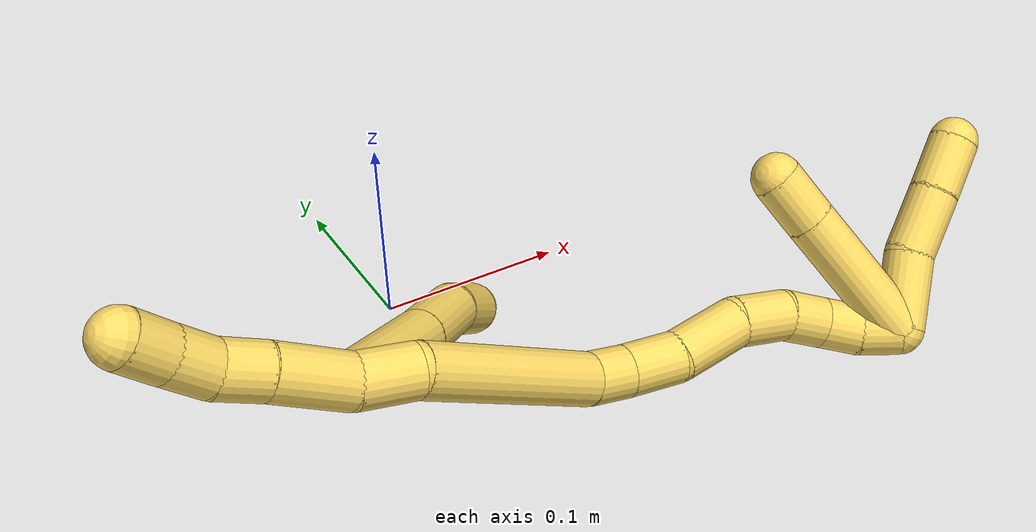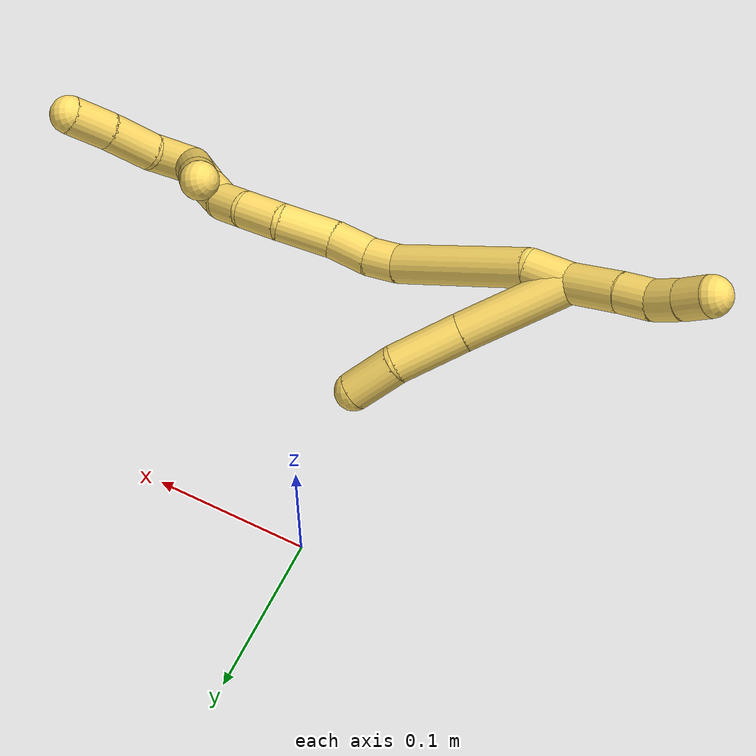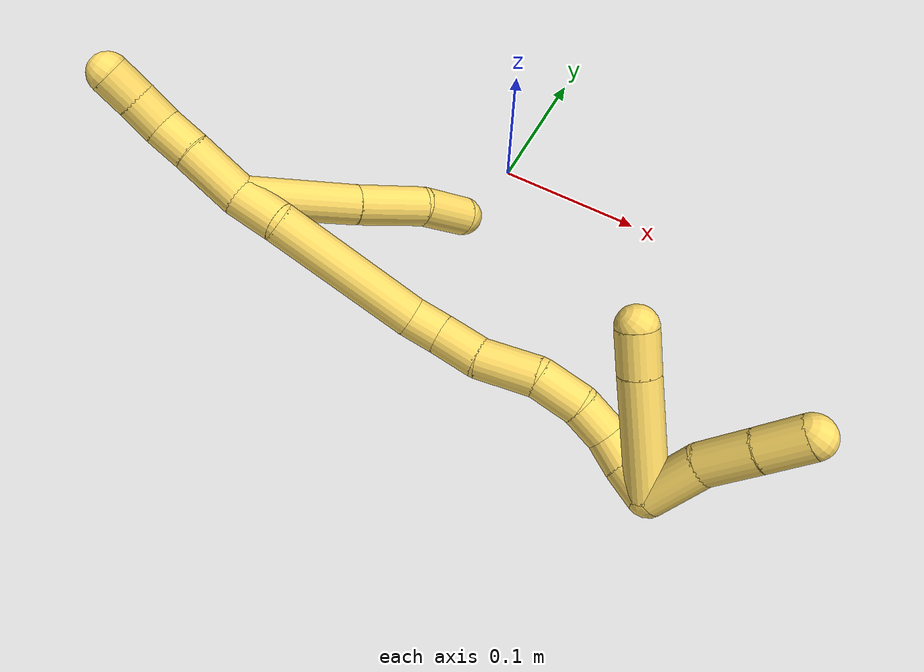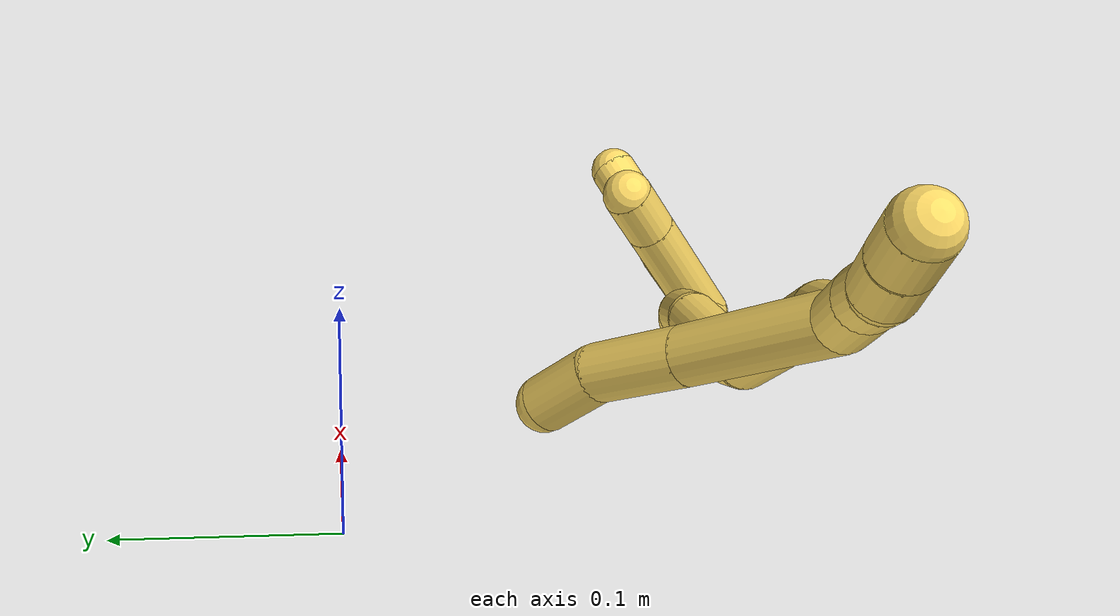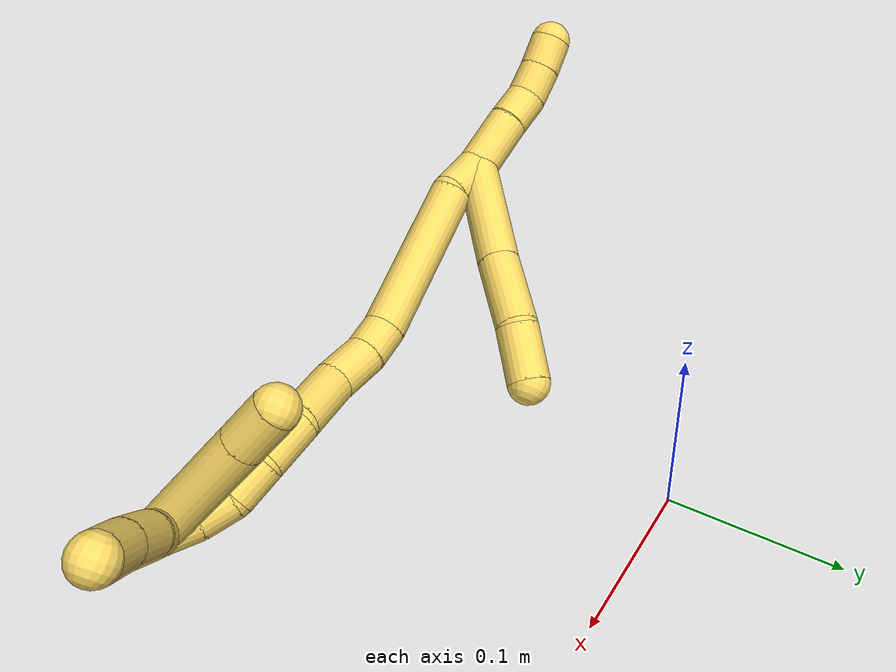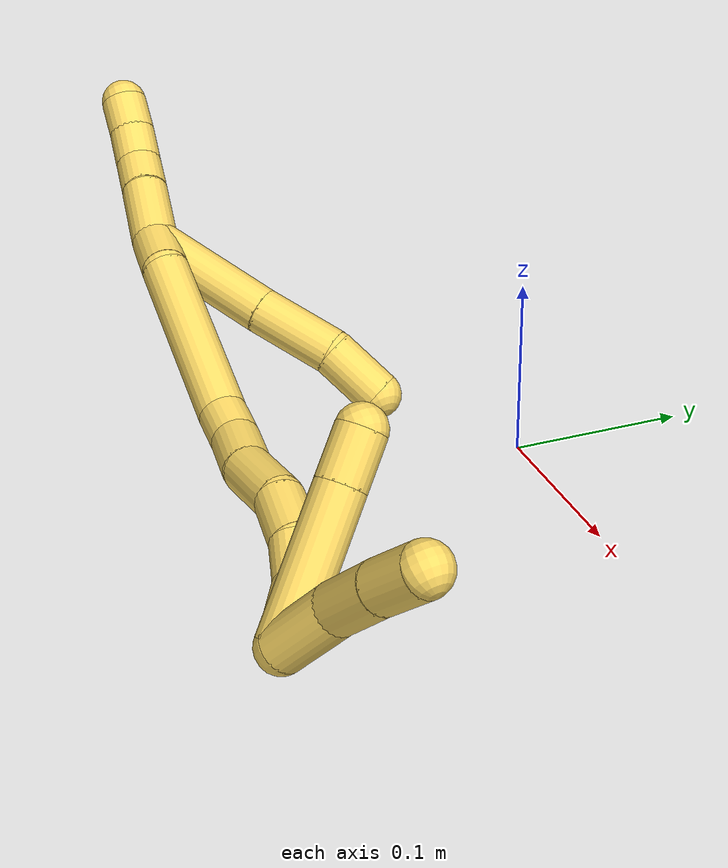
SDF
<sdf version="1.7">
 <world name="default">
  <model name="5">
   <static>0</static>
   <link name="5">
    <collision name="collision-cylinder-e_1_2_8">
     <pose>0.015552 -0.011822 0.030029 0.375055 0.449058 0.086619</pose>
     <geometry><cylinder><radius>0.0125</radius><length>0.071647</length></cylinder></geometry>
     <surface>
      <friction><ode><mu>1.16</mu><mu2>1.16</mu2><slip1>0</slip1><slip2>0</slip2></ode></friction>
      <contact><ode><kp>1e+06</kp><kd>1</kd><max_vel>0</max_vel><min_depth>0.001</min_depth></ode></contact>
     </surface>
    </collision>
    <visual name="visual-cylinder-e_1_2_8">
     <pose>0.015552 -0.011822 0.030029 0.375055 0.449058 0.086619</pose>
     <geometry><cylinder><radius>0.0125</radius><length>0.071647</length></cylinder></geometry>
     <material><ambient>1 0.858824 0.4 1</ambient></material>
    </visual>
    <collision name="collision-cylinder-e_2_8_9">
     <pose>0.041594 -0.031544 0.078378 0.407127 0.484077 0.101834</pose>
     <geometry><cylinder><radius>0.0125</radius><length>0.045083</length></cylinder></geometry>
     <surface>
      <friction><ode><mu>1.16</mu><mu2>1.16</mu2><slip1>0</slip1><slip2>0</slip2></ode></friction>
      <contact><ode><kp>1e+06</kp><kd>1</kd><max_vel>0</max_vel><min_depth>0.001</min_depth></ode></contact>
     </surface>
    </collision>
    <visual name="visual-cylinder-e_2_8_9">
     <pose>0.041594 -0.031544 0.078378 0.407127 0.484077 0.101834</pose>
     <geometry><cylinder><radius>0.0125</radius><length>0.045083</length></cylinder></geometry>
     <material><ambient>1 0.858824 0.4 1</ambient></material>
    </visual>
    <collision name="collision-cylinder-e_3_9_6">
     <pose>0.055936 -0.046869 0.111078 0.476615 0.233664 0.057007</pose>
     <geometry><cylinder><radius>0.0125</radius><length>0.03327</length></cylinder></geometry>
     <surface>
      <friction><ode><mu>1.16</mu><mu2>1.16</mu2><slip1>0</slip1><slip2>0</slip2></ode></friction>
      <contact><ode><kp>1e+06</kp><kd>1</kd><max_vel>0</max_vel><min_depth>0.001</min_depth></ode></contact>
     </surface>
    </collision>
    <visual name="visual-cylinder-e_3_9_6">
     <pose>0.055936 -0.046869 0.111078 0.476615 0.233664 0.057007</pose>
     <geometry><cylinder><radius>0.0125</radius><length>0.03327</length></cylinder></geometry>
     <material><ambient>1 0.858824 0.4 1</ambient></material>
    </visual>
    <collision name="collision-cylinder-e_1_2_10">
     <pose>0.00092 -0.003994 -0.01815 2.92498 0.04948 0.447537</pose>
     <geometry><cylinder><radius>0.0125</radius><length>0.037214</length></cylinder></geometry>
     <surface>
      <friction><ode><mu>1.16</mu><mu2>1.16</mu2><slip1>0</slip1><slip2>0</slip2></ode></friction>
      <contact><ode><kp>1e+06</kp><kd>1</kd><max_vel>0</max_vel><min_depth>0.001</min_depth></ode></contact>
     </surface>
    </collision>
    <visual name="visual-cylinder-e_1_2_10">
     <pose>0.00092 -0.003994 -0.01815 2.92498 0.04948 0.447537</pose>
     <geometry><cylinder><radius>0.0125</radius><length>0.037214</length></cylinder></geometry>
     <material><ambient>1 0.858824 0.4 1</ambient></material>
    </visual>
    <collision name="collision-cylinder-e_2_10_11">
     <pose>0.001838 -0.010947 -0.046904 2.86952 -0.000272 -0.001986</pose>
     <geometry><cylinder><radius>0.0125</radius><length>0.02202</length></cylinder></geometry>
     <surface>
      <friction><ode><mu>1.16</mu><mu2>1.16</mu2><slip1>0</slip1><slip2>0</slip2></ode></friction>
      <contact><ode><kp>1e+06</kp><kd>1</kd><max_vel>0</max_vel><min_depth>0.001</min_depth></ode></contact>
     </surface>
    </collision>
    <visual name="visual-cylinder-e_2_10_11">
     <pose>0.001838 -0.010947 -0.046904 2.86952 -0.000272 -0.001986</pose>
     <geometry><cylinder><radius>0.0125</radius><length>0.02202</length></cylinder></geometry>
     <material><ambient>1 0.858824 0.4 1</ambient></material>
    </visual>
    <collision name="collision-cylinder-e_3_11_12">
     <pose>0.003561 -0.014154 -0.067693 3.11715 0.1679 2.85313</pose>
     <geometry><cylinder><radius>0.0125</radius><length>0.020664</length></cylinder></geometry>
     <surface>
      <friction><ode><mu>1.16</mu><mu2>1.16</mu2><slip1>0</slip1><slip2>0</slip2></ode></friction>
      <contact><ode><kp>1e+06</kp><kd>1</kd><max_vel>0</max_vel><min_depth>0.001</min_depth></ode></contact>
     </surface>
    </collision>
    <visual name="visual-cylinder-e_3_11_12">
     <pose>0.003561 -0.014154 -0.067693 3.11715 0.1679 2.85313</pose>
     <geometry><cylinder><radius>0.0125</radius><length>0.020664</length></cylinder></geometry>
     <material><ambient>1 0.858824 0.4 1</ambient></material>
    </visual>
    <collision name="collision-cylinder-e_4_12_5">
     <pose>0.006932 -0.013927 -0.087781 -3.09348 0.164327 -2.57308</pose>
     <geometry><cylinder><radius>0.0125</radius><length>0.020103</length></cylinder></geometry>
     <surface>
      <friction><ode><mu>1.16</mu><mu2>1.16</mu2><slip1>0</slip1><slip2>0</slip2></ode></friction>
      <contact><ode><kp>1e+06</kp><kd>1</kd><max_vel>0</max_vel><min_depth>0.001</min_depth></ode></contact>
     </surface>
    </collision>
    <visual name="visual-cylinder-e_4_12_5">
     <pose>0.006932 -0.013927 -0.087781 -3.09348 0.164327 -2.57308</pose>
     <geometry><cylinder><radius>0.0125</radius><length>0.020103</length></cylinder></geometry>
     <material><ambient>1 0.858824 0.4 1</ambient></material>
    </visual>
    <collision name="collision-cylinder-e_1_2_13">
     <pose>0.002616 0.005575 0.012475 -0.420276 0.189141 -0.040457</pose>
     <geometry><cylinder><radius>0.0125</radius><length>0.027825</length></cylinder></geometry>
     <surface>
      <friction><ode><mu>1.16</mu><mu2>1.16</mu2><slip1>0</slip1><slip2>0</slip2></ode></friction>
      <contact><ode><kp>1e+06</kp><kd>1</kd><max_vel>0</max_vel><min_depth>0.001</min_depth></ode></contact>
     </surface>
    </collision>
    <visual name="visual-cylinder-e_1_2_13">
     <pose>0.002616 0.005575 0.012475 -0.420276 0.189141 -0.040457</pose>
     <geometry><cylinder><radius>0.0125</radius><length>0.027825</length></cylinder></geometry>
     <material><ambient>1 0.858824 0.4 1</ambient></material>
    </visual>
    <collision name="collision-cylinder-e_2_13_14">
     <pose>0.00732 0.016041 0.072583 -0.102318 0.043579 -0.002232</pose>
     <geometry><cylinder><radius>0.0125</radius><length>0.095857</length></cylinder></geometry>
     <surface>
      <friction><ode><mu>1.16</mu><mu2>1.16</mu2><slip1>0</slip1><slip2>0</slip2></ode></friction>
      <contact><ode><kp>1e+06</kp><kd>1</kd><max_vel>0</max_vel><min_depth>0.001</min_depth></ode></contact>
     </surface>
    </collision>
    <visual name="visual-cylinder-e_2_13_14">
     <pose>0.00732 0.016041 0.072583 -0.102318 0.043579 -0.002232</pose>
     <geometry><cylinder><radius>0.0125</radius><length>0.095857</length></cylinder></geometry>
     <material><ambient>1 0.858824 0.4 1</ambient></material>
    </visual>
    <collision name="collision-cylinder-e_3_14_15">
     <pose>0.011622 0.024053 0.12984 -0.313544 0.215501 -0.034193</pose>
     <geometry><cylinder><radius>0.0125</radius><length>0.020714</length></cylinder></geometry>
     <surface>
      <friction><ode><mu>1.16</mu><mu2>1.16</mu2><slip1>0</slip1><slip2>0</slip2></ode></friction>
      <contact><ode><kp>1e+06</kp><kd>1</kd><max_vel>0</max_vel><min_depth>0.001</min_depth></ode></contact>
     </surface>
    </collision>
    <visual name="visual-cylinder-e_3_14_15">
     <pose>0.011622 0.024053 0.12984 -0.313544 0.215501 -0.034193</pose>
     <geometry><cylinder><radius>0.0125</radius><length>0.020714</length></cylinder></geometry>
     <material><ambient>1 0.858824 0.4 1</ambient></material>
    </visual>
    <collision name="collision-cylinder-e_4_15_16">
     <pose>0.017268 0.033801 0.150934 -0.523965 0.253393 -0.068286</pose>
     <geometry><cylinder><radius>0.0125</radius><length>0.02737</length></cylinder></geometry>
     <surface>
      <friction><ode><mu>1.16</mu><mu2>1.16</mu2><slip1>0</slip1><slip2>0</slip2></ode></friction>
      <contact><ode><kp>1e+06</kp><kd>1</kd><max_vel>0</max_vel><min_depth>0.001</min_depth></ode></contact>
     </surface>
    </collision>
    <visual name="visual-cylinder-e_4_15_16">
     <pose>0.017268 0.033801 0.150934 -0.523965 0.253393 -0.068286</pose>
     <geometry><cylinder><radius>0.0125</radius><length>0.02737</length></cylinder></geometry>
     <material><ambient>1 0.858824 0.4 1</ambient></material>
    </visual>
    <collision name="collision-cylinder-e_5_16_17">
     <pose>0.029272 0.047648 0.176791 -0.465079 0.489417 -0.118138</pose>
     <geometry><cylinder><radius>0.0125</radius><length>0.036473</length></cylinder></geometry>
     <surface>
      <friction><ode><mu>1.16</mu><mu2>1.16</mu2><slip1>0</slip1><slip2>0</slip2></ode></friction>
      <contact><ode><kp>1e+06</kp><kd>1</kd><max_vel>0</max_vel><min_depth>0.001</min_depth></ode></contact>
     </surface>
    </collision>
    <visual name="visual-cylinder-e_5_16_17">
     <pose>0.029272 0.047648 0.176791 -0.465079 0.489417 -0.118138</pose>
     <geometry><cylinder><radius>0.0125</radius><length>0.036473</length></cylinder></geometry>
     <material><ambient>1 0.858824 0.4 1</ambient></material>
    </visual>
    <collision name="collision-cylinder-e_6_17_18">
     <pose>0.040237 0.060243 0.204177 -0.392113 0.168472 -0.033536</pose>
     <geometry><cylinder><radius>0.0125</radius><length>0.02854</length></cylinder></geometry>
     <surface>
      <friction><ode><mu>1.16</mu><mu2>1.16</mu2><slip1>0</slip1><slip2>0</slip2></ode></friction>
      <contact><ode><kp>1e+06</kp><kd>1</kd><max_vel>0</max_vel><min_depth>0.001</min_depth></ode></contact>
     </surface>
    </collision>
    <visual name="visual-cylinder-e_6_17_18">
     <pose>0.040237 0.060243 0.204177 -0.392113 0.168472 -0.033536</pose>
     <geometry><cylinder><radius>0.0125</radius><length>0.02854</length></cylinder></geometry>
     <material><ambient>1 0.858824 0.4 1</ambient></material>
    </visual>
    <collision name="collision-cylinder-e_7_18_19">
     <pose>0.041441 0.069265 0.227938 -0.326729 -0.104304 0.017208</pose>
     <geometry><cylinder><radius>0.0125</radius><length>0.022848</length></cylinder></geometry>
     <surface>
      <friction><ode><mu>1.16</mu><mu2>1.16</mu2><slip1>0</slip1><slip2>0</slip2></ode></friction>
      <contact><ode><kp>1e+06</kp><kd>1</kd><max_vel>0</max_vel><min_depth>0.001</min_depth></ode></contact>
     </surface>
    </collision>
    <visual name="visual-cylinder-e_7_18_19">
     <pose>0.041441 0.069265 0.227938 -0.326729 -0.104304 0.017208</pose>
     <geometry><cylinder><radius>0.0125</radius><length>0.022848</length></cylinder></geometry>
     <material><ambient>1 0.858824 0.4 1</ambient></material>
    </visual>
    <collision name="collision-cylinder-e_8_19_20">
     <pose>0.038063 0.078761 0.246535 -0.641201 -0.220156 0.073368</pose>
     <geometry><cylinder><radius>0.0125</radius><length>0.020041</length></cylinder></geometry>
     <surface>
      <friction><ode><mu>1.16</mu><mu2>1.16</mu2><slip1>0</slip1><slip2>0</slip2></ode></friction>
      <contact><ode><kp>1e+06</kp><kd>1</kd><max_vel>0</max_vel><min_depth>0.001</min_depth></ode></contact>
     </surface>
    </collision>
    <visual name="visual-cylinder-e_8_19_20">
     <pose>0.038063 0.078761 0.246535 -0.641201 -0.220156 0.073368</pose>
     <geometry><cylinder><radius>0.0125</radius><length>0.020041</length></cylinder></geometry>
     <material><ambient>1 0.858824 0.4 1</ambient></material>
    </visual>
    <collision name="collision-cylinder-e_9_20_1">
     <pose>0.035307 0.092154 0.261163 -0.837863 -0.055929 0.02491</pose>
     <geometry><cylinder><radius>0.0125</radius><length>0.020333</length></cylinder></geometry>
     <surface>
      <friction><ode><mu>1.16</mu><mu2>1.16</mu2><slip1>0</slip1><slip2>0</slip2></ode></friction>
      <contact><ode><kp>1e+06</kp><kd>1</kd><max_vel>0</max_vel><min_depth>0.001</min_depth></ode></contact>
     </surface>
    </collision>
    <visual name="visual-cylinder-e_9_20_1">
     <pose>0.035307 0.092154 0.261163 -0.837863 -0.055929 0.02491</pose>
     <geometry><cylinder><radius>0.0125</radius><length>0.020333</length></cylinder></geometry>
     <material><ambient>1 0.858824 0.4 1</ambient></material>
    </visual>
    <collision name="collision-cylinder-e_1_1_21">
     <pose>0.052982 0.104678 0.268845 -1.39372 1.30029 -1.13355</pose>
     <geometry><cylinder><radius>0.0125</radius><length>0.037864</length></cylinder></geometry>
     <surface>
      <friction><ode><mu>1.16</mu><mu2>1.16</mu2><slip1>0</slip1><slip2>0</slip2></ode></friction>
      <contact><ode><kp>1e+06</kp><kd>1</kd><max_vel>0</max_vel><min_depth>0.001</min_depth></ode></contact>
     </surface>
    </collision>
    <visual name="visual-cylinder-e_1_1_21">
     <pose>0.052982 0.104678 0.268845 -1.39372 1.30029 -1.13355</pose>
     <geometry><cylinder><radius>0.0125</radius><length>0.037864</length></cylinder></geometry>
     <material><ambient>1 0.858824 0.4 1</ambient></material>
    </visual>
    <collision name="collision-cylinder-e_2_21_22">
     <pose>0.085882 0.116787 0.273136 -1.12579 1.07653 -0.720606</pose>
     <geometry><cylinder><radius>0.0125</radius><length>0.033297</length></cylinder></geometry>
     <surface>
      <friction><ode><mu>1.16</mu><mu2>1.16</mu2><slip1>0</slip1><slip2>0</slip2></ode></friction>
      <contact><ode><kp>1e+06</kp><kd>1</kd><max_vel>0</max_vel><min_depth>0.001</min_depth></ode></contact>
     </surface>
    </collision>
    <visual name="visual-cylinder-e_2_21_22">
     <pose>0.085882 0.116787 0.273136 -1.12579 1.07653 -0.720606</pose>
     <geometry><cylinder><radius>0.0125</radius><length>0.033297</length></cylinder></geometry>
     <material><ambient>1 0.858824 0.4 1</ambient></material>
    </visual>
    <collision name="collision-cylinder-e_3_22_4">
     <pose>0.113375 0.129472 0.280036 -1.00864 1.09794 -0.651184</pose>
     <geometry><cylinder><radius>0.0125</radius><length>0.028838</length></cylinder></geometry>
     <surface>
      <friction><ode><mu>1.16</mu><mu2>1.16</mu2><slip1>0</slip1><slip2>0</slip2></ode></friction>
      <contact><ode><kp>1e+06</kp><kd>1</kd><max_vel>0</max_vel><min_depth>0.001</min_depth></ode></contact>
     </surface>
    </collision>
    <visual name="visual-cylinder-e_3_22_4">
     <pose>0.113375 0.129472 0.280036 -1.00864 1.09794 -0.651184</pose>
     <geometry><cylinder><radius>0.0125</radius><length>0.028838</length></cylinder></geometry>
     <material><ambient>1 0.858824 0.4 1</ambient></material>
    </visual>
    <collision name="collision-cylinder-e_1_1_23">
     <pose>0.059791 0.093787 0.241879 2.91865 0.752876 2.58969</pose>
     <geometry><cylinder><radius>0.0125</radius><length>0.073281</length></cylinder></geometry>
     <surface>
      <friction><ode><mu>1.16</mu><mu2>1.16</mu2><slip1>0</slip1><slip2>0</slip2></ode></friction>
      <contact><ode><kp>1e+06</kp><kd>1</kd><max_vel>0</max_vel><min_depth>0.001</min_depth></ode></contact>
     </surface>
    </collision>
    <visual name="visual-cylinder-e_1_1_23">
     <pose>0.059791 0.093787 0.241879 2.91865 0.752876 2.58969</pose>
     <geometry><cylinder><radius>0.0125</radius><length>0.073281</length></cylinder></geometry>
     <material><ambient>1 0.858824 0.4 1</ambient></material>
    </visual>
    <collision name="collision-cylinder-e_2_23_3">
     <pose>0.094068 0.085819 0.20636 2.92725 0.762166 2.61694</pose>
     <geometry><cylinder><radius>0.0125</radius><length>0.026719</length></cylinder></geometry>
     <surface>
      <friction><ode><mu>1.16</mu><mu2>1.16</mu2><slip1>0</slip1><slip2>0</slip2></ode></friction>
      <contact><ode><kp>1e+06</kp><kd>1</kd><max_vel>0</max_vel><min_depth>0.001</min_depth></ode></contact>
     </surface>
    </collision>
    <visual name="visual-cylinder-e_2_23_3">
     <pose>0.094068 0.085819 0.20636 2.92725 0.762166 2.61694</pose>
     <geometry><cylinder><radius>0.0125</radius><length>0.026719</length></cylinder></geometry>
     <material><ambient>1 0.858824 0.4 1</ambient></material>
    </visual>
    <collision name="collision-sphere-3">
     <pose>0.103293 0.083764 0.196918 0 -0 0</pose>
     <geometry><sphere><radius>0.0125</radius></sphere></geometry>
     <surface>
      <friction><ode><mu>1.16</mu><mu2>1.16</mu2><slip1>0</slip1><slip2>0</slip2></ode></friction>
      <contact><ode><kp>1e+06</kp><kd>1</kd><max_vel>0</max_vel><min_depth>0.001</min_depth></ode></contact>
     </surface>
    </collision>
    <visual name="visual-sphere-3">
     <pose>0.103293 0.083764 0.196918 0 -0 0</pose>
     <geometry><sphere><radius>0.0125</radius></sphere></geometry>
     <material><ambient>1 0.858824 0.4 1</ambient></material>
    </visual>
    <collision name="collision-sphere-23">
     <pose>0.084843 0.087875 0.215803 0 -0 0</pose>
     <geometry><sphere><radius>0.0125</radius></sphere></geometry>
     <surface>
      <friction><ode><mu>1.16</mu><mu2>1.16</mu2><slip1>0</slip1><slip2>0</slip2></ode></friction>
      <contact><ode><kp>1e+06</kp><kd>1</kd><max_vel>0</max_vel><min_depth>0.001</min_depth></ode></contact>
     </surface>
    </collision>
    <visual name="visual-sphere-23">
     <pose>0.084843 0.087875 0.215803 0 -0 0</pose>
     <geometry><sphere><radius>0.0125</radius></sphere></geometry>
     <material><ambient>1 0.858824 0.4 1</ambient></material>
    </visual>
    <collision name="collision-sphere-4">
     <pose>0.126212 0.135028 0.283537 0 -0 0</pose>
     <geometry><sphere><radius>0.0125</radius></sphere></geometry>
     <surface>
      <friction><ode><mu>1.16</mu><mu2>1.16</mu2><slip1>0</slip1><slip2>0</slip2></ode></friction>
      <contact><ode><kp>1e+06</kp><kd>1</kd><max_vel>0</max_vel><min_depth>0.001</min_depth></ode></contact>
     </surface>
    </collision>
    <visual name="visual-sphere-4">
     <pose>0.126212 0.135028 0.283537 0 -0 0</pose>
     <geometry><sphere><radius>0.0125</radius></sphere></geometry>
     <material><ambient>1 0.858824 0.4 1</ambient></material>
    </visual>
    <collision name="collision-sphere-22">
     <pose>0.100538 0.123916 0.276536 0 -0 0</pose>
     <geometry><sphere><radius>0.0125</radius></sphere></geometry>
     <surface>
      <friction><ode><mu>1.16</mu><mu2>1.16</mu2><slip1>0</slip1><slip2>0</slip2></ode></friction>
      <contact><ode><kp>1e+06</kp><kd>1</kd><max_vel>0</max_vel><min_depth>0.001</min_depth></ode></contact>
     </surface>
    </collision>
    <visual name="visual-sphere-22">
     <pose>0.100538 0.123916 0.276536 0 -0 0</pose>
     <geometry><sphere><radius>0.0125</radius></sphere></geometry>
     <material><ambient>1 0.858824 0.4 1</ambient></material>
    </visual>
    <collision name="collision-sphere-21">
     <pose>0.071226 0.109658 0.269737 0 -0 0</pose>
     <geometry><sphere><radius>0.0125</radius></sphere></geometry>
     <surface>
      <friction><ode><mu>1.16</mu><mu2>1.16</mu2><slip1>0</slip1><slip2>0</slip2></ode></friction>
      <contact><ode><kp>1e+06</kp><kd>1</kd><max_vel>0</max_vel><min_depth>0.001</min_depth></ode></contact>
     </surface>
    </collision>
    <visual name="visual-sphere-21">
     <pose>0.071226 0.109658 0.269737 0 -0 0</pose>
     <geometry><sphere><radius>0.0125</radius></sphere></geometry>
     <material><ambient>1 0.858824 0.4 1</ambient></material>
    </visual>
    <collision name="collision-sphere-1">
     <pose>0.034738 0.099698 0.267954 0 -0 0</pose>
     <geometry><sphere><radius>0.0125</radius></sphere></geometry>
     <surface>
      <friction><ode><mu>1.16</mu><mu2>1.16</mu2><slip1>0</slip1><slip2>0</slip2></ode></friction>
      <contact><ode><kp>1e+06</kp><kd>1</kd><max_vel>0</max_vel><min_depth>0.001</min_depth></ode></contact>
     </surface>
    </collision>
    <visual name="visual-sphere-1">
     <pose>0.034738 0.099698 0.267954 0 -0 0</pose>
     <geometry><sphere><radius>0.0125</radius></sphere></geometry>
     <material><ambient>1 0.858824 0.4 1</ambient></material>
    </visual>
    <collision name="collision-sphere-11">
     <pose>0.001835 -0.013906 -0.057509 0 -0 0</pose>
     <geometry><sphere><radius>0.0125</radius></sphere></geometry>
     <surface>
      <friction><ode><mu>1.16</mu><mu2>1.16</mu2><slip1>0</slip1><slip2>0</slip2></ode></friction>
      <contact><ode><kp>1e+06</kp><kd>1</kd><max_vel>0</max_vel><min_depth>0.001</min_depth></ode></contact>
     </surface>
    </collision>
    <visual name="visual-sphere-11">
     <pose>0.001835 -0.013906 -0.057509 0 -0 0</pose>
     <geometry><sphere><radius>0.0125</radius></sphere></geometry>
     <material><ambient>1 0.858824 0.4 1</ambient></material>
    </visual>
    <collision name="collision-sphere-10">
     <pose>0.001841 -0.007988 -0.0363 0 -0 0</pose>
     <geometry><sphere><radius>0.0125</radius></sphere></geometry>
     <surface>
      <friction><ode><mu>1.16</mu><mu2>1.16</mu2><slip1>0</slip1><slip2>0</slip2></ode></friction>
      <contact><ode><kp>1e+06</kp><kd>1</kd><max_vel>0</max_vel><min_depth>0.001</min_depth></ode></contact>
     </surface>
    </collision>
    <visual name="visual-sphere-10">
     <pose>0.001841 -0.007988 -0.0363 0 -0 0</pose>
     <geometry><sphere><radius>0.0125</radius></sphere></geometry>
     <material><ambient>1 0.858824 0.4 1</ambient></material>
    </visual>
    <collision name="collision-sphere-6">
     <pose>0.059788 -0.054293 0.125457 0 -0 0</pose>
     <geometry><sphere><radius>0.0125</radius></sphere></geometry>
     <surface>
      <friction><ode><mu>1.16</mu><mu2>1.16</mu2><slip1>0</slip1><slip2>0</slip2></ode></friction>
      <contact><ode><kp>1e+06</kp><kd>1</kd><max_vel>0</max_vel><min_depth>0.001</min_depth></ode></contact>
     </surface>
    </collision>
    <visual name="visual-sphere-6">
     <pose>0.059788 -0.054293 0.125457 0 -0 0</pose>
     <geometry><sphere><radius>0.0125</radius></sphere></geometry>
     <material><ambient>1 0.858824 0.4 1</ambient></material>
    </visual>
    <collision name="collision-sphere-9">
     <pose>0.052085 -0.039445 0.096699 0 -0 0</pose>
     <geometry><sphere><radius>0.0125</radius></sphere></geometry>
     <surface>
      <friction><ode><mu>1.16</mu><mu2>1.16</mu2><slip1>0</slip1><slip2>0</slip2></ode></friction>
      <contact><ode><kp>1e+06</kp><kd>1</kd><max_vel>0</max_vel><min_depth>0.001</min_depth></ode></contact>
     </surface>
    </collision>
    <visual name="visual-sphere-9">
     <pose>0.052085 -0.039445 0.096699 0 -0 0</pose>
     <geometry><sphere><radius>0.0125</radius></sphere></geometry>
     <material><ambient>1 0.858824 0.4 1</ambient></material>
    </visual>
    <collision name="collision-sphere-2">
     <geometry><sphere><radius>0.0125</radius></sphere></geometry>
     <surface>
      <friction><ode><mu>1.16</mu><mu2>1.16</mu2><slip1>0</slip1><slip2>0</slip2></ode></friction>
      <contact><ode><kp>1e+06</kp><kd>1</kd><max_vel>0</max_vel><min_depth>0.001</min_depth></ode></contact>
     </surface>
    </collision>
    <visual name="visual-sphere-2">
     <geometry><sphere><radius>0.0125</radius></sphere></geometry>
     <material><ambient>1 0.858824 0.4 1</ambient></material>
    </visual>
    <collision name="collision-sphere-19">
     <pose>0.040251 0.072912 0.238699 0 -0 0</pose>
     <geometry><sphere><radius>0.0125</radius></sphere></geometry>
     <surface>
      <friction><ode><mu>1.16</mu><mu2>1.16</mu2><slip1>0</slip1><slip2>0</slip2></ode></friction>
      <contact><ode><kp>1e+06</kp><kd>1</kd><max_vel>0</max_vel><min_depth>0.001</min_depth></ode></contact>
     </surface>
    </collision>
    <visual name="visual-sphere-19">
     <pose>0.040251 0.072912 0.238699 0 -0 0</pose>
     <geometry><sphere><radius>0.0125</radius></sphere></geometry>
     <material><ambient>1 0.858824 0.4 1</ambient></material>
    </visual>
    <collision name="collision-sphere-8">
     <pose>0.031103 -0.023644 0.060057 0 -0 0</pose>
     <geometry><sphere><radius>0.0125</radius></sphere></geometry>
     <surface>
      <friction><ode><mu>1.16</mu><mu2>1.16</mu2><slip1>0</slip1><slip2>0</slip2></ode></friction>
      <contact><ode><kp>1e+06</kp><kd>1</kd><max_vel>0</max_vel><min_depth>0.001</min_depth></ode></contact>
     </surface>
    </collision>
    <visual name="visual-sphere-8">
     <pose>0.031103 -0.023644 0.060057 0 -0 0</pose>
     <geometry><sphere><radius>0.0125</radius></sphere></geometry>
     <material><ambient>1 0.858824 0.4 1</ambient></material>
    </visual>
    <collision name="collision-sphere-12">
     <pose>0.005288 -0.014403 -0.077876 0 -0 0</pose>
     <geometry><sphere><radius>0.0125</radius></sphere></geometry>
     <surface>
      <friction><ode><mu>1.16</mu><mu2>1.16</mu2><slip1>0</slip1><slip2>0</slip2></ode></friction>
      <contact><ode><kp>1e+06</kp><kd>1</kd><max_vel>0</max_vel><min_depth>0.001</min_depth></ode></contact>
     </surface>
    </collision>
    <visual name="visual-sphere-12">
     <pose>0.005288 -0.014403 -0.077876 0 -0 0</pose>
     <geometry><sphere><radius>0.0125</radius></sphere></geometry>
     <material><ambient>1 0.858824 0.4 1</ambient></material>
    </visual>
    <collision name="collision-sphere-5">
     <pose>0.008576 -0.01345 -0.097685 0 -0 0</pose>
     <geometry><sphere><radius>0.0125</radius></sphere></geometry>
     <surface>
      <friction><ode><mu>1.16</mu><mu2>1.16</mu2><slip1>0</slip1><slip2>0</slip2></ode></friction>
      <contact><ode><kp>1e+06</kp><kd>1</kd><max_vel>0</max_vel><min_depth>0.001</min_depth></ode></contact>
     </surface>
    </collision>
    <visual name="visual-sphere-5">
     <pose>0.008576 -0.01345 -0.097685 0 -0 0</pose>
     <geometry><sphere><radius>0.0125</radius></sphere></geometry>
     <material><ambient>1 0.858824 0.4 1</ambient></material>
    </visual>
    <collision name="collision-sphere-13">
     <pose>0.005232 0.011151 0.024951 0 -0 0</pose>
     <geometry><sphere><radius>0.0125</radius></sphere></geometry>
     <surface>
      <friction><ode><mu>1.16</mu><mu2>1.16</mu2><slip1>0</slip1><slip2>0</slip2></ode></friction>
      <contact><ode><kp>1e+06</kp><kd>1</kd><max_vel>0</max_vel><min_depth>0.001</min_depth></ode></contact>
     </surface>
    </collision>
    <visual name="visual-sphere-13">
     <pose>0.005232 0.011151 0.024951 0 -0 0</pose>
     <geometry><sphere><radius>0.0125</radius></sphere></geometry>
     <material><ambient>1 0.858824 0.4 1</ambient></material>
    </visual>
    <collision name="collision-sphere-14">
     <pose>0.009408 0.020932 0.120216 0 -0 0</pose>
     <geometry><sphere><radius>0.0125</radius></sphere></geometry>
     <surface>
      <friction><ode><mu>1.16</mu><mu2>1.16</mu2><slip1>0</slip1><slip2>0</slip2></ode></friction>
      <contact><ode><kp>1e+06</kp><kd>1</kd><max_vel>0</max_vel><min_depth>0.001</min_depth></ode></contact>
     </surface>
    </collision>
    <visual name="visual-sphere-14">
     <pose>0.009408 0.020932 0.120216 0 -0 0</pose>
     <geometry><sphere><radius>0.0125</radius></sphere></geometry>
     <material><ambient>1 0.858824 0.4 1</ambient></material>
    </visual>
    <collision name="collision-sphere-15">
     <pose>0.013837 0.027173 0.139464 0 -0 0</pose>
     <geometry><sphere><radius>0.0125</radius></sphere></geometry>
     <surface>
      <friction><ode><mu>1.16</mu><mu2>1.16</mu2><slip1>0</slip1><slip2>0</slip2></ode></friction>
      <contact><ode><kp>1e+06</kp><kd>1</kd><max_vel>0</max_vel><min_depth>0.001</min_depth></ode></contact>
     </surface>
    </collision>
    <visual name="visual-sphere-15">
     <pose>0.013837 0.027173 0.139464 0 -0 0</pose>
     <geometry><sphere><radius>0.0125</radius></sphere></geometry>
     <material><ambient>1 0.858824 0.4 1</ambient></material>
    </visual>
    <collision name="collision-sphere-16">
     <pose>0.020698 0.04043 0.162405 0 -0 0</pose>
     <geometry><sphere><radius>0.0125</radius></sphere></geometry>
     <surface>
      <friction><ode><mu>1.16</mu><mu2>1.16</mu2><slip1>0</slip1><slip2>0</slip2></ode></friction>
      <contact><ode><kp>1e+06</kp><kd>1</kd><max_vel>0</max_vel><min_depth>0.001</min_depth></ode></contact>
     </surface>
    </collision>
    <visual name="visual-sphere-16">
     <pose>0.020698 0.04043 0.162405 0 -0 0</pose>
     <geometry><sphere><radius>0.0125</radius></sphere></geometry>
     <material><ambient>1 0.858824 0.4 1</ambient></material>
    </visual>
    <collision name="collision-sphere-17">
     <pose>0.037845 0.054867 0.191177 0 -0 0</pose>
     <geometry><sphere><radius>0.0125</radius></sphere></geometry>
     <surface>
      <friction><ode><mu>1.16</mu><mu2>1.16</mu2><slip1>0</slip1><slip2>0</slip2></ode></friction>
      <contact><ode><kp>1e+06</kp><kd>1</kd><max_vel>0</max_vel><min_depth>0.001</min_depth></ode></contact>
     </surface>
    </collision>
    <visual name="visual-sphere-17">
     <pose>0.037845 0.054867 0.191177 0 -0 0</pose>
     <geometry><sphere><radius>0.0125</radius></sphere></geometry>
     <material><ambient>1 0.858824 0.4 1</ambient></material>
    </visual>
    <collision name="collision-sphere-18">
     <pose>0.04263 0.065619 0.217178 0 -0 0</pose>
     <geometry><sphere><radius>0.0125</radius></sphere></geometry>
     <surface>
      <friction><ode><mu>1.16</mu><mu2>1.16</mu2><slip1>0</slip1><slip2>0</slip2></ode></friction>
      <contact><ode><kp>1e+06</kp><kd>1</kd><max_vel>0</max_vel><min_depth>0.001</min_depth></ode></contact>
     </surface>
    </collision>
    <visual name="visual-sphere-18">
     <pose>0.04263 0.065619 0.217178 0 -0 0</pose>
     <geometry><sphere><radius>0.0125</radius></sphere></geometry>
     <material><ambient>1 0.858824 0.4 1</ambient></material>
    </visual>
    <collision name="collision-sphere-20">
     <pose>0.035875 0.08461 0.254371 0 -0 0</pose>
     <geometry><sphere><radius>0.0125</radius></sphere></geometry>
     <surface>
      <friction><ode><mu>1.16</mu><mu2>1.16</mu2><slip1>0</slip1><slip2>0</slip2></ode></friction>
      <contact><ode><kp>1e+06</kp><kd>1</kd><max_vel>0</max_vel><min_depth>0.001</min_depth></ode></contact>
     </surface>
    </collision>
    <visual name="visual-sphere-20">
     <pose>0.035875 0.08461 0.254371 0 -0 0</pose>
     <geometry><sphere><radius>0.0125</radius></sphere></geometry>
     <material><ambient>1 0.858824 0.4 1</ambient></material>
    </visual>
    <inertial>
     <pose>0.035066 0.036759 0.129276 0 -0 0</pose>
     <mass>0.75</mass>
     <inertia>
      <ixx>0.000159</ixx>
      <ixy>0</ixy>
      <ixz>0</ixz>
      <iyy>0.000202</iyy>
      <iyz>0</iyz>
      <izz>-4.5e-05</izz>
     </inertia>
    </inertial>
   </link>
   <pose>-0.091658 -0.178775 0.11816 2.3758 -0.6667 1.11321</pose>
  </model>
 </world>
</sdf>
